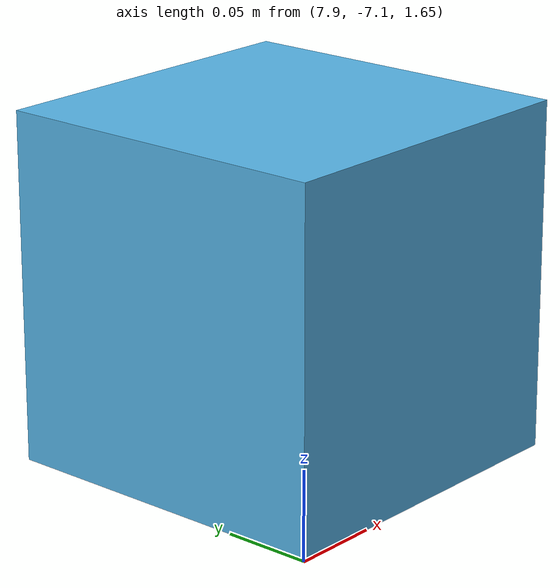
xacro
<?xml version="1.0"?>

<robot name="sensor" xmlns:xacro="http://www.ros.org/wiki/xacro">
  <xacro:include filename="$(find camera_kuka)/urdf/base.xacro"/>
  <gazebo reference="sensor">
    <sensor type="camera" name="camera2">
      <update_rate>30.0</update_rate>
      <camera name="head">
        <horizontal_fov>1.3962634</horizontal_fov>
        <image>
          <width>800</width>
          <height>600</height>
          <format>R8G8B8</format>
        </image>
        <clip>
          <near>0.02</near>
          <far>300</far>
        </clip>
        <noise>
          <type>gaussian</type>
          <mean>0.0</mean>
          <stddev>0.007</stddev>
        </noise>
      </camera>
      <plugin name="camera_controller" filename="libgazebo_ros_camera.so">
        <alwaysOn>true</alwaysOn>
        <updateRate>0.0</updateRate>
        <cameraName>/wall_camera</cameraName>
        <imageTopicName>image_raw</imageTopicName>
        <cameraInfoTopicName>camera_info</cameraInfoTopicName>
        <frameName>wall_camera_link</frameName>
        <hackBaseline>0.07</hackBaseline>
        <distortionK1>0.0</distortionK1>
        <distortionK2>0.0</distortionK2>
        <distortionK3>0.0</distortionK3>
        <distortionT1>0.0</distortionT1>
        <distortionT2>0.0</distortionT2>
      </plugin>
    </sensor>
  </gazebo>
</robot>

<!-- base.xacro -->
<robot name="sensor" xmlns:xacro="http://www.ros.org/wiki/xacro">

  <xacro:property name="box_height" value="0.2" />
  <xacro:property name="box_width" value="0.2" />

 	<link name="world"/>
  <joint name="fixed" type="fixed">
    <parent link="world"/>
    <child link="sensor"/>
    <origin xyz="8 -7 1.75" rpy="0 1.57 0"/>
  </joint>
	<link name="sensor">
    <visual>
      <origin xyz="0 0 0" rpy="0 0 0"/>
      <geometry>
        <box size="${box_width} ${box_width} ${box_height}"/>
      </geometry>
    </visual>
   <inertial>
      <origin xyz="0 0 1" rpy="0 0 0"/>
      <mass value="1"/>
      <inertia
        ixx="1.0" ixy="0.0" ixz="0.0"
        iyy="1.0" iyz="0.0"
        izz="1.0"/>
    </inertial>
  </link>

</robot>
